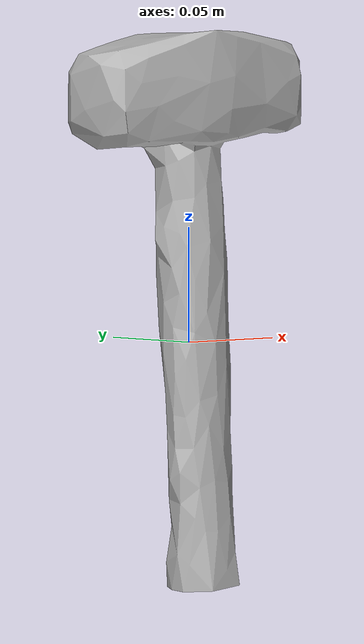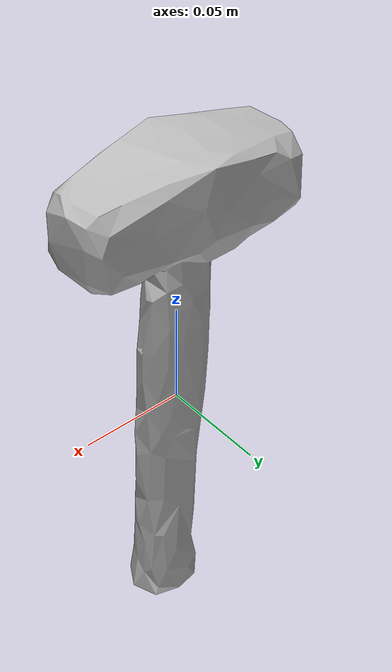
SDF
<?xml version="1.0" ?>
<sdf version="1.4">
  <model name="mallet_drilling">
    <pose>0 0 0.013  0 0 0</pose>
    <static>false</static>
    <link name="body">
      <inertial>
        <pose> 0.001804 0.000644 0.050726 0 0 0</pose>
        <mass>1.2</mass>
        <inertia>
          <ixx>1.51984e-3</ixx>
          <ixy>-0.00513e-3</ixy>
          <ixz>0.08213e-3</ixz>
          <iyy>1.67323e-3</iyy>
          <iyz>0.03057e-3</iyz>
          <izz>0.22224e-3</izz>
        </inertia>
      </inertial>
      <visual name="visual">
        <cast_shadows>true</cast_shadows>
        <geometry>
         <mesh>
           <uri>package://costar_objects/sdf/mallet_drilling/meshes/mallet_drilling.obj</uri>
         </mesh>
        </geometry>
      </visual>
      <collision name="collision">
        <surface>
          <friction>
            <ode>
              <mu>0.3</mu>
              <mu2>0.3</mu2>
            </ode>
          </friction>
        </surface>
        <geometry>
         <mesh>
           <uri>package://costar_objects/sdf/mallet_drilling/meshes/mallet_drilling.stl</uri>
         </mesh>
        </geometry>
      </collision>
    </link>
  </model>
</sdf>
